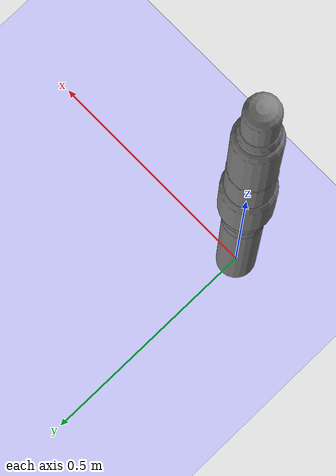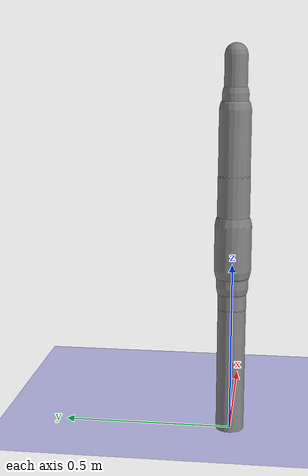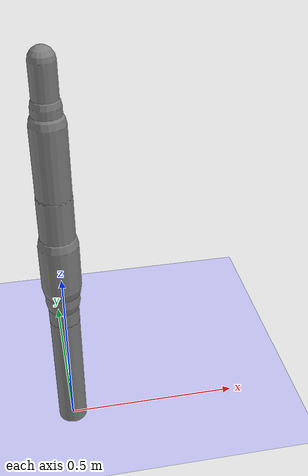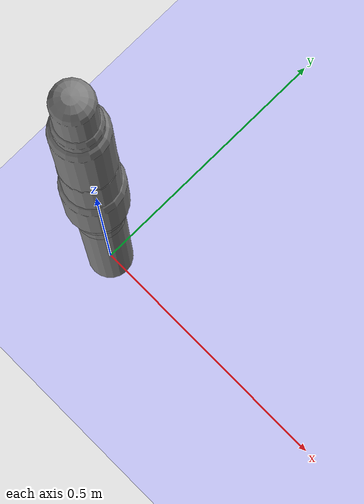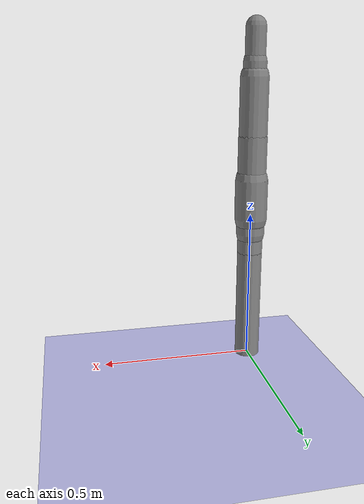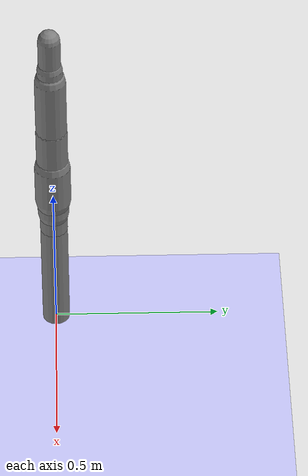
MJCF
<?xml version='1.0' encoding='UTF-8'?>
<mujoco model="robot_model">
  <worldbody>
    <light name="light" pos="0 -3 10" dir="0 0.5 -1" diffuse=".8 .8 .8" specular="0.1 0.1 0.1"/>
    <geom name="floor" type="plane" size="10.0 10.0 0.1" pos="0 0 0" rgba="0.8 0.8 1 1" contype="2" conaffinity="1"/>
    <body name="limb0" pos="0 0 0">
      <geom type="capsule" fromto="0 0 0 0 0 0.5168985753257858" size="0.04128788024965397" density="853.1800252391434" contype="1" conaffinity="2"/>
      <site type="sphere" size="0.01" name="limb0_site0" pos="0 0 0.2711730696890426"/>
      <site type="sphere" size="0.01" name="limb0_site1" pos="0 0 0.48676657016892105"/>
      <freejoint name="limb0_root"/>
      <body name="limb1" pos="0 0 0.2711730696890426">
        <geom type="capsule" fromto="0 0 0 0 0 0.26352721695644377" size="0.030049497353524975" density="568.4749053336583" contype="1" conaffinity="2"/>
        <site type="sphere" size="0.01" name="limb1_site0" pos="0 0 0.16441536377580307"/>
        <site type="sphere" size="0.01" name="limb1_site1" pos="0 0 0.10088823502999796"/>
        <site type="sphere" size="0.01" name="limb1_site2" pos="0 0 0.253161343816984"/>
        <body name="limb2" pos="0 0 0.16441536377580307">
          <geom type="capsule" fromto="0 0 0 0 0 0.32331157919001374" size="0.04703069767789839" density="709.8359320414992" contype="1" conaffinity="2"/>
          <joint name="joint_limb1_limb2_0" type="hinge" axis="0 1 0" range="-82.7424809592319 82.7424809592319" damping="5.0"/>
        </body>
        <body name="limb3" pos="0 0 0.10088823502999796">
          <geom type="capsule" fromto="0 0 0 0 0 0.3449366956007403" size="0.04182995516077146" density="888.638751137447" contype="1" conaffinity="2"/>
          <site type="sphere" size="0.01" name="limb3_site0" pos="0 0 0.34476469369601037"/>
          <body name="limb4" pos="0 0 0.34476469369601037">
            <geom type="capsule" fromto="0 0 0 0 0 0.38689637571819735" size="0.03296585503229504" density="787.6117064878987" contype="1" conaffinity="2"/>
            <joint name="joint_limb3_limb4_0" type="hinge" axis="0 1 0" range="-97.60316524447805 97.60316524447805" damping="5.0"/>
          </body>
          <joint name="joint_limb1_limb3_0" type="hinge" axis="1 0 0" range="-76.57739072162552 76.57739072162552" damping="5.0"/>
        </body>
        <body name="limb5" pos="0 0 0.253161343816984">
          <geom type="capsule" fromto="0 0 0 0 0 0.4727806644286577" size="0.03794159670294999" density="1047.9904850783728" contype="1" conaffinity="2"/>
          <site type="sphere" size="0.01" name="limb5_site0" pos="0 0 0.2278818572451243"/>
          <site type="sphere" size="0.01" name="limb5_site1" pos="0 0 0.24213420106092137"/>
          <body name="limb6" pos="0 0 0.2278818572451243">
            <geom type="capsule" fromto="0 0 0 0 0 0.19942307054689806" size="0.04609395862756084" density="1147.4288306062897" contype="1" conaffinity="2"/>
            <joint name="joint_limb5_limb6_0" type="hinge" axis="0 0 1" range="-97.3556228309299 97.3556228309299" damping="5.0"/>
          </body>
          <body name="limb7" pos="0 0 0.24213420106092137">
            <geom type="capsule" fromto="0 0 0 0 0 0.21655813590085218" size="0.027508024731723566" density="671.1252264493512" contype="1" conaffinity="2"/>
            <joint name="joint_limb5_limb7_0" type="hinge" axis="1 0 0" range="-39.46093477322345 39.46093477322345" damping="5.0"/>
          </body>
          <joint name="joint_limb1_limb5_0" type="hinge" axis="0 1 0" range="-80.38696577407528 80.38696577407528" damping="5.0"/>
        </body>
        <joint name="joint_limb0_limb1_0" type="hinge" axis="0 1 0" range="-100.99842495504495 100.99842495504495" damping="5.0"/>
      </body>
      <body name="limb8" pos="0 0 0.48676657016892105">
        <geom type="capsule" fromto="0 0 0 0 0 0.13252947652278277" size="0.05372058858359962" density="1100.1826029615775" contype="1" conaffinity="2"/>
        <joint name="joint_limb0_limb8_0" type="hinge" axis="0 1 0" range="-51.67399017382569 51.67399017382569" damping="5.0"/>
      </body>
    </body>
  </worldbody>
  <actuator>
    <position name="position_actuator_joint_limb0_limb1_0" joint="joint_limb0_limb1_0" gear="1.0372010919807022" inheritrange="1" kp="10.0"/>
    <position name="position_actuator_joint_limb1_limb2_0" joint="joint_limb1_limb2_0" gear="0.7360723872815542" inheritrange="1" kp="10.0"/>
    <position name="position_actuator_joint_limb1_limb3_0" joint="joint_limb1_limb3_0" gear="1.9786544527946286" inheritrange="1" kp="10.0"/>
    <position name="position_actuator_joint_limb3_limb4_0" joint="joint_limb3_limb4_0" gear="1.7459471619076385" inheritrange="1" kp="10.0"/>
    <position name="position_actuator_joint_limb1_limb5_0" joint="joint_limb1_limb5_0" gear="1.272740550353963" inheritrange="1" kp="10.0"/>
    <position name="position_actuator_joint_limb5_limb6_0" joint="joint_limb5_limb6_0" gear="1.2514069354827302" inheritrange="1" kp="10.0"/>
    <position name="position_actuator_joint_limb5_limb7_0" joint="joint_limb5_limb7_0" gear="1.6699171564828723" inheritrange="1" kp="10.0"/>
    <position name="position_actuator_joint_limb0_limb8_0" joint="joint_limb0_limb8_0" gear="0.5217723291950931" inheritrange="1" kp="10.0"/>
  </actuator>
</mujoco>
